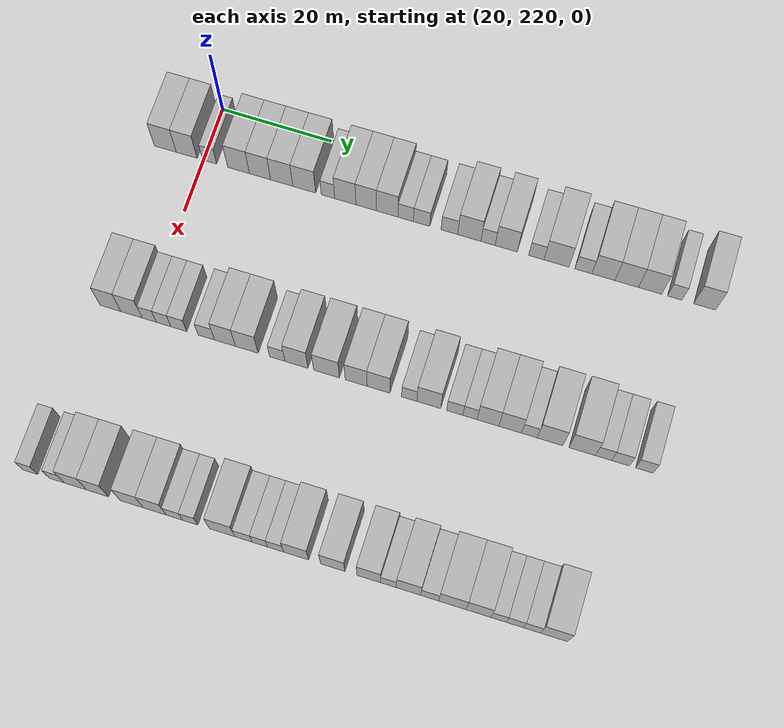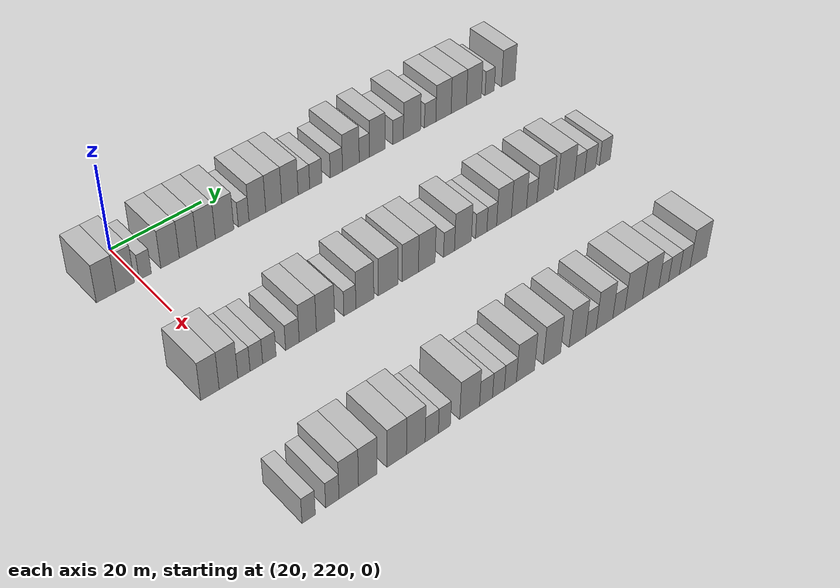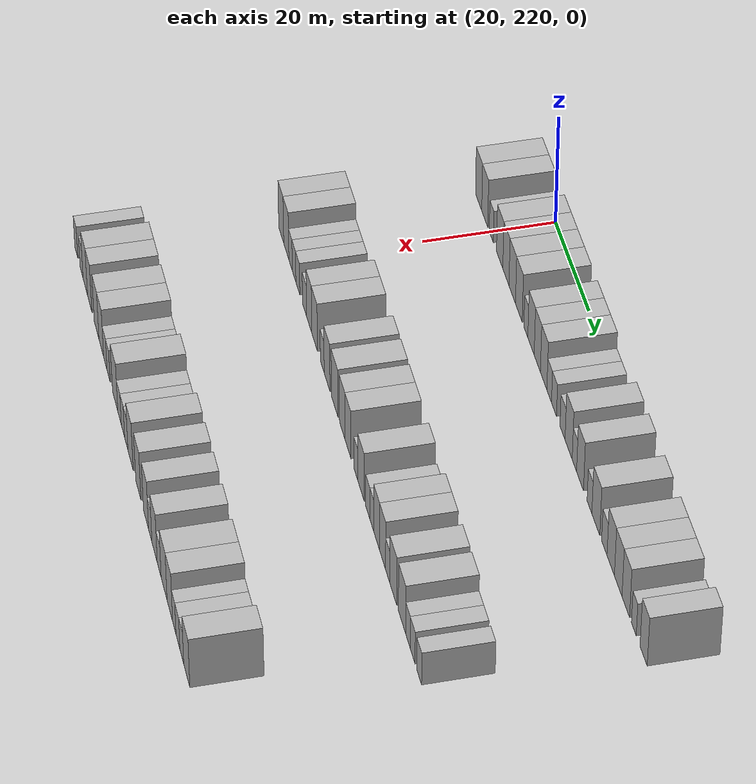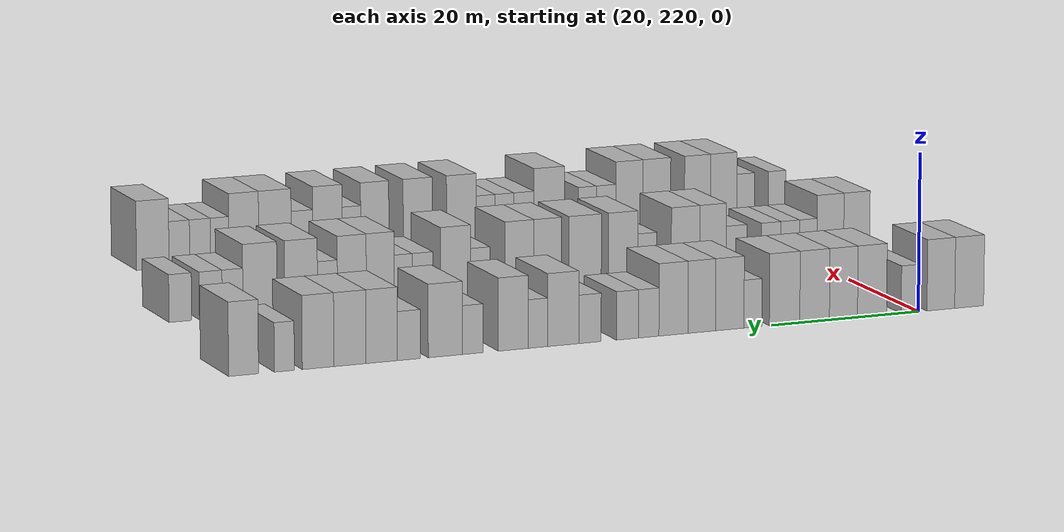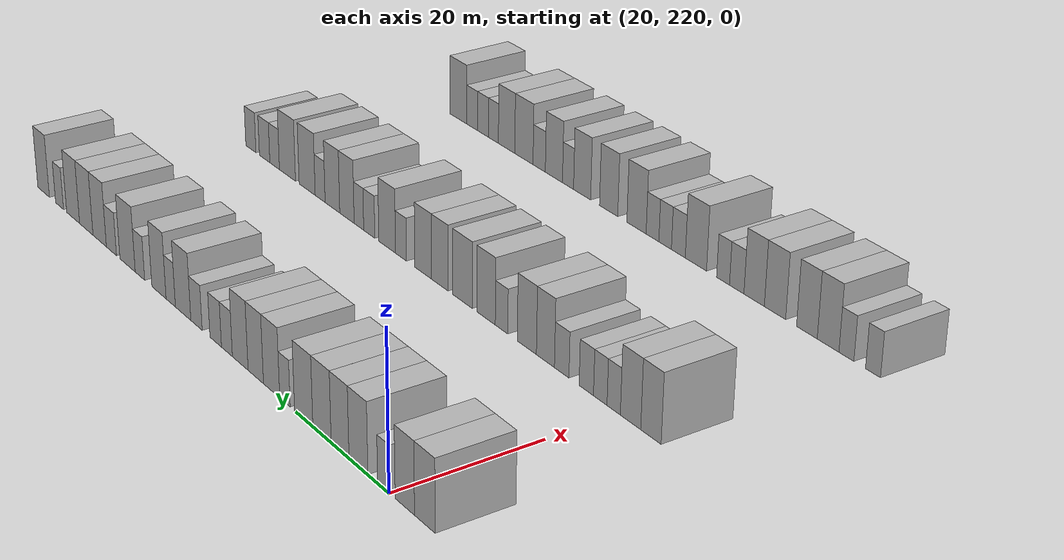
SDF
<sdf version="1.6">
 <world name="default">
  <model name="building_161">
   <static>1</static>
   <pose>25.0000 213.0078 0 0.000000 0.000000 0.000000</pose>
   <link name="link">
    <pose>0 0 4.50 0 0 0</pose>
    <collision name="collision"><geometry><box><size>10.0000 4.0017 9.0000</size></box></geometry></collision>
    <visual name="visual">
     <cast_shadows>0</cast_shadows>
     <geometry><box><size>10.0000 4.0017 9.0000</size></box></geometry>
     <material>
      <script>
       <uri>model://HANNAS_wall/materials/scripts</uri>
       <uri>model://HANNAS_wall/materials/textures</uri>
       <name>vrc/HANNAS_wall</name>
      </script>
     </material>
    </visual>
   </link>
  </model>
  <model name="building_162">
   <static>1</static>
   <pose>25.0000 216.9216 0 0.000000 0.000000 0.000000</pose>
   <link name="link">
    <pose>0 0 4.50 0 0 0</pose>
    <collision name="collision"><geometry><box><size>10.0000 3.8259 9.0000</size></box></geometry></collision>
    <visual name="visual">
     <cast_shadows>0</cast_shadows>
     <geometry><box><size>10.0000 3.8259 9.0000</size></box></geometry>
     <material>
      <script>
       <uri>model://HANNAS_wall/materials/scripts</uri>
       <uri>model://HANNAS_wall/materials/textures</uri>
       <name>vrc/HANNAS_wall</name>
      </script>
     </material>
    </visual>
   </link>
  </model>
  <model name="building_163">
   <static>1</static>
   <pose>25.0000 221.1102 0 0.000000 0.000000 0.000000</pose>
   <link name="link">
    <pose>0 0 3.00 0 0 0</pose>
    <collision name="collision"><geometry><box><size>10.0000 2.5511 6.0000</size></box></geometry></collision>
    <visual name="visual">
     <cast_shadows>0</cast_shadows>
     <geometry><box><size>10.0000 2.5511 6.0000</size></box></geometry>
     <material>
      <script>
       <uri>model://HANNAS_wall/materials/scripts</uri>
       <uri>model://HANNAS_wall/materials/textures</uri>
       <name>vrc/HANNAS_wall</name>
      </script>
     </material>
    </visual>
   </link>
  </model>
  <model name="building_164">
   <static>1</static>
   <pose>25.0000 226.3686 0 0.000000 0.000000 0.000000</pose>
   <link name="link">
    <pose>0 0 4.50 0 0 0</pose>
    <collision name="collision"><geometry><box><size>10.0000 3.9657 9.0000</size></box></geometry></collision>
    <visual name="visual">
     <cast_shadows>0</cast_shadows>
     <geometry><box><size>10.0000 3.9657 9.0000</size></box></geometry>
     <material>
      <script>
       <uri>model://HANNAS_wall/materials/scripts</uri>
       <uri>model://HANNAS_wall/materials/textures</uri>
       <name>vrc/HANNAS_wall</name>
      </script>
     </material>
    </visual>
   </link>
  </model>
  <model name="building_165">
   <static>1</static>
   <pose>25.0000 230.2644 0 0.000000 0.000000 0.000000</pose>
   <link name="link">
    <pose>0 0 4.50 0 0 0</pose>
    <collision name="collision"><geometry><box><size>10.0000 3.8260 9.0000</size></box></geometry></collision>
    <visual name="visual">
     <cast_shadows>0</cast_shadows>
     <geometry><box><size>10.0000 3.8260 9.0000</size></box></geometry>
     <material>
      <script>
       <uri>model://HANNAS_wall/materials/scripts</uri>
       <uri>model://HANNAS_wall/materials/textures</uri>
       <name>vrc/HANNAS_wall</name>
      </script>
     </material>
    </visual>
   </link>
  </model>
  <model name="building_166">
   <static>1</static>
   <pose>25.0000 234.1877 0 0.000000 0.000000 0.000000</pose>
   <link name="link">
    <pose>0 0 4.50 0 0 0</pose>
    <collision name="collision"><geometry><box><size>10.0000 4.0205 9.0000</size></box></geometry></collision>
    <visual name="visual">
     <cast_shadows>0</cast_shadows>
     <geometry><box><size>10.0000 4.0205 9.0000</size></box></geometry>
     <material>
      <script>
       <uri>model://HANNAS_wall/materials/scripts</uri>
       <uri>model://HANNAS_wall/materials/textures</uri>
       <name>vrc/HANNAS_wall</name>
      </script>
     </material>
    </visual>
   </link>
  </model>
  <model name="building_167">
   <static>1</static>
   <pose>25.0000 238.2552 0 0.000000 0.000000 0.000000</pose>
   <link name="link">
    <pose>0 0 4.50 0 0 0</pose>
    <collision name="collision"><geometry><box><size>10.0000 4.1146 9.0000</size></box></geometry></collision>
    <visual name="visual">
     <cast_shadows>0</cast_shadows>
     <geometry><box><size>10.0000 4.1146 9.0000</size></box></geometry>
     <material>
      <script>
       <uri>model://HANNAS_wall/materials/scripts</uri>
       <uri>model://HANNAS_wall/materials/textures</uri>
       <name>vrc/HANNAS_wall</name>
      </script>
     </material>
    </visual>
   </link>
  </model>
  <model name="building_168">
   <static>1</static>
   <pose>25.0000 242.5196 0 0.000000 0.000000 0.000000</pose>
   <link name="link">
    <pose>0 0 3.00 0 0 0</pose>
    <collision name="collision"><geometry><box><size>10.0000 2.4142 6.0000</size></box></geometry></collision>
    <visual name="visual">
     <cast_shadows>0</cast_shadows>
     <geometry><box><size>10.0000 2.4142 6.0000</size></box></geometry>
     <material>
      <script>
       <uri>model://HANNAS_wall/materials/scripts</uri>
       <uri>model://HANNAS_wall/materials/textures</uri>
       <name>vrc/HANNAS_wall</name>
      </script>
     </material>
    </visual>
   </link>
  </model>
  <model name="building_169">
   <static>1</static>
   <pose>25.0000 245.6295 0 0.000000 0.000000 0.000000</pose>
   <link name="link">
    <pose>0 0 4.50 0 0 0</pose>
    <collision name="collision"><geometry><box><size>10.0000 3.8058 9.0000</size></box></geometry></collision>
    <visual name="visual">
     <cast_shadows>0</cast_shadows>
     <geometry><box><size>10.0000 3.8058 9.0000</size></box></geometry>
     <material>
      <script>
       <uri>model://HANNAS_wall/materials/scripts</uri>
       <uri>model://HANNAS_wall/materials/textures</uri>
       <name>vrc/HANNAS_wall</name>
      </script>
     </material>
    </visual>
   </link>
  </model>
  <model name="building_170">
   <static>1</static>
   <pose>25.0000 249.3775 0 0.000000 0.000000 0.000000</pose>
   <link name="link">
    <pose>0 0 4.50 0 0 0</pose>
    <collision name="collision"><geometry><box><size>10.0000 3.6903 9.0000</size></box></geometry></collision>
    <visual name="visual">
     <cast_shadows>0</cast_shadows>
     <geometry><box><size>10.0000 3.6903 9.0000</size></box></geometry>
     <material>
      <script>
       <uri>model://HANNAS_wall/materials/scripts</uri>
       <uri>model://HANNAS_wall/materials/textures</uri>
       <name>vrc/HANNAS_wall</name>
      </script>
     </material>
    </visual>
   </link>
  </model>
  <model name="building_171">
   <static>1</static>
   <pose>25.0000 253.1462 0 0.000000 0.000000 0.000000</pose>
   <link name="link">
    <pose>0 0 4.50 0 0 0</pose>
    <collision name="collision"><geometry><box><size>10.0000 3.8471 9.0000</size></box></geometry></collision>
    <visual name="visual">
     <cast_shadows>0</cast_shadows>
     <geometry><box><size>10.0000 3.8471 9.0000</size></box></geometry>
     <material>
      <script>
       <uri>model://HANNAS_wall/materials/scripts</uri>
       <uri>model://HANNAS_wall/materials/textures</uri>
       <name>vrc/HANNAS_wall</name>
      </script>
     </material>
    </visual>
   </link>
  </model>
  <model name="building_172">
   <static>1</static>
   <pose>25.0000 256.4319 0 0.000000 0.000000 0.000000</pose>
   <link name="link">
    <pose>0 0 3.00 0 0 0</pose>
    <collision name="collision"><geometry><box><size>10.0000 2.7244 6.0000</size></box></geometry></collision>
    <visual name="visual">
     <cast_shadows>0</cast_shadows>
     <geometry><box><size>10.0000 2.7244 6.0000</size></box></geometry>
     <material>
      <script>
       <uri>model://HANNAS_wall/materials/scripts</uri>
       <uri>model://HANNAS_wall/materials/textures</uri>
       <name>vrc/HANNAS_wall</name>
      </script>
     </material>
    </visual>
   </link>
  </model>
  <model name="building_173">
   <static>1</static>
   <pose>25.0000 259.2507 0 0.000000 0.000000 0.000000</pose>
   <link name="link">
    <pose>0 0 3.00 0 0 0</pose>
    <collision name="collision"><geometry><box><size>10.0000 2.9132 6.0000</size></box></geometry></collision>
    <visual name="visual">
     <cast_shadows>0</cast_shadows>
     <geometry><box><size>10.0000 2.9132 6.0000</size></box></geometry>
     <material>
      <script>
       <uri>model://HANNAS_wall/materials/scripts</uri>
       <uri>model://HANNAS_wall/materials/textures</uri>
       <name>vrc/HANNAS_wall</name>
      </script>
     </material>
    </visual>
   </link>
  </model>
  <model name="building_174">
   <static>1</static>
   <pose>25.0000 264.1804 0 0.000000 0.000000 0.000000</pose>
   <link name="link">
    <pose>0 0 3.00 0 0 0</pose>
    <collision name="collision"><geometry><box><size>10.0000 2.9462 6.0000</size></box></geometry></collision>
    <visual name="visual">
     <cast_shadows>0</cast_shadows>
     <geometry><box><size>10.0000 2.9462 6.0000</size></box></geometry>
     <material>
      <script>
       <uri>model://HANNAS_wall/materials/scripts</uri>
       <uri>model://HANNAS_wall/materials/textures</uri>
       <name>vrc/HANNAS_wall</name>
      </script>
     </material>
    </visual>
   </link>
  </model>
  <model name="building_175">
   <static>1</static>
   <pose>25.0000 267.7006 0 0.000000 0.000000 0.000000</pose>
   <link name="link">
    <pose>0 0 4.50 0 0 0</pose>
    <collision name="collision"><geometry><box><size>10.0000 4.0941 9.0000</size></box></geometry></collision>
    <visual name="visual">
     <cast_shadows>0</cast_shadows>
     <geometry><box><size>10.0000 4.0941 9.0000</size></box></geometry>
     <material>
      <script>
       <uri>model://HANNAS_wall/materials/scripts</uri>
       <uri>model://HANNAS_wall/materials/textures</uri>
       <name>vrc/HANNAS_wall</name>
      </script>
     </material>
    </visual>
   </link>
  </model>
  <model name="building_176">
   <static>1</static>
   <pose>25.0000 271.0064 0 0.000000 0.000000 0.000000</pose>
   <link name="link">
    <pose>0 0 3.00 0 0 0</pose>
    <collision name="collision"><geometry><box><size>10.0000 2.5176 6.0000</size></box></geometry></collision>
    <visual name="visual">
     <cast_shadows>0</cast_shadows>
     <geometry><box><size>10.0000 2.5176 6.0000</size></box></geometry>
     <material>
      <script>
       <uri>model://HANNAS_wall/materials/scripts</uri>
       <uri>model://HANNAS_wall/materials/textures</uri>
       <name>vrc/HANNAS_wall</name>
      </script>
     </material>
    </visual>
   </link>
  </model>
  <model name="building_177">
   <static>1</static>
   <pose>25.0000 274.2102 0 0.000000 0.000000 0.000000</pose>
   <link name="link">
    <pose>0 0 4.50 0 0 0</pose>
    <collision name="collision"><geometry><box><size>10.0000 3.8900 9.0000</size></box></geometry></collision>
    <visual name="visual">
     <cast_shadows>0</cast_shadows>
     <geometry><box><size>10.0000 3.8900 9.0000</size></box></geometry>
     <material>
      <script>
       <uri>model://HANNAS_wall/materials/scripts</uri>
       <uri>model://HANNAS_wall/materials/textures</uri>
       <name>vrc/HANNAS_wall</name>
      </script>
     </material>
    </visual>
   </link>
  </model>
  <model name="building_178">
   <static>1</static>
   <pose>25.0000 279.4917 0 0.000000 0.000000 0.000000</pose>
   <link name="link">
    <pose>0 0 3.00 0 0 0</pose>
    <collision name="collision"><geometry><box><size>10.0000 2.6729 6.0000</size></box></geometry></collision>
    <visual name="visual">
     <cast_shadows>0</cast_shadows>
     <geometry><box><size>10.0000 2.6729 6.0000</size></box></geometry>
     <material>
      <script>
       <uri>model://HANNAS_wall/materials/scripts</uri>
       <uri>model://HANNAS_wall/materials/textures</uri>
       <name>vrc/HANNAS_wall</name>
      </script>
     </material>
    </visual>
   </link>
  </model>
  <model name="building_179">
   <static>1</static>
   <pose>25.0000 283.0258 0 0.000000 0.000000 0.000000</pose>
   <link name="link">
    <pose>0 0 4.50 0 0 0</pose>
    <collision name="collision"><geometry><box><size>10.0000 4.3953 9.0000</size></box></geometry></collision>
    <visual name="visual">
     <cast_shadows>0</cast_shadows>
     <geometry><box><size>10.0000 4.3953 9.0000</size></box></geometry>
     <material>
      <script>
       <uri>model://HANNAS_wall/materials/scripts</uri>
       <uri>model://HANNAS_wall/materials/textures</uri>
       <name>vrc/HANNAS_wall</name>
      </script>
     </material>
    </visual>
   </link>
  </model>
  <model name="building_180">
   <static>1</static>
   <pose>25.0000 287.7073 0 0.000000 0.000000 0.000000</pose>
   <link name="link">
    <pose>0 0 3.00 0 0 0</pose>
    <collision name="collision"><geometry><box><size>10.0000 2.9677 6.0000</size></box></geometry></collision>
    <visual name="visual">
     <cast_shadows>0</cast_shadows>
     <geometry><box><size>10.0000 2.9677 6.0000</size></box></geometry>
     <material>
      <script>
       <uri>model://HANNAS_wall/materials/scripts</uri>
       <uri>model://HANNAS_wall/materials/textures</uri>
       <name>vrc/HANNAS_wall</name>
      </script>
     </material>
    </visual>
   </link>
  </model>
  <model name="building_181">
   <static>1</static>
   <pose>25.0000 291.1958 0 0.000000 0.000000 0.000000</pose>
   <link name="link">
    <pose>0 0 4.50 0 0 0</pose>
    <collision name="collision"><geometry><box><size>10.0000 4.0093 9.0000</size></box></geometry></collision>
    <visual name="visual">
     <cast_shadows>0</cast_shadows>
     <geometry><box><size>10.0000 4.0093 9.0000</size></box></geometry>
     <material>
      <script>
       <uri>model://HANNAS_wall/materials/scripts</uri>
       <uri>model://HANNAS_wall/materials/textures</uri>
       <name>vrc/HANNAS_wall</name>
      </script>
     </material>
    </visual>
   </link>
  </model>
  <model name="building_182">
   <static>1</static>
   <pose>25.0000 295.2416 0 0.000000 0.000000 0.000000</pose>
   <link name="link">
    <pose>0 0 4.50 0 0 0</pose>
    <collision name="collision"><geometry><box><size>10.0000 4.0824 9.0000</size></box></geometry></collision>
    <visual name="visual">
     <cast_shadows>0</cast_shadows>
     <geometry><box><size>10.0000 4.0824 9.0000</size></box></geometry>
     <material>
      <script>
       <uri>model://HANNAS_wall/materials/scripts</uri>
       <uri>model://HANNAS_wall/materials/textures</uri>
       <name>vrc/HANNAS_wall</name>
      </script>
     </material>
    </visual>
   </link>
  </model>
  <model name="building_183">
   <static>1</static>
   <pose>25.0000 299.2977 0 0.000000 0.000000 0.000000</pose>
   <link name="link">
    <pose>0 0 4.50 0 0 0</pose>
    <collision name="collision"><geometry><box><size>10.0000 4.0297 9.0000</size></box></geometry></collision>
    <visual name="visual">
     <cast_shadows>0</cast_shadows>
     <geometry><box><size>10.0000 4.0297 9.0000</size></box></geometry>
     <material>
      <script>
       <uri>model://HANNAS_wall/materials/scripts</uri>
       <uri>model://HANNAS_wall/materials/textures</uri>
       <name>vrc/HANNAS_wall</name>
      </script>
     </material>
    </visual>
   </link>
  </model>
  <model name="building_184">
   <static>1</static>
   <pose>25.0000 303.5728 0 0.000000 0.000000 0.000000</pose>
   <link name="link">
    <pose>0 0 3.00 0 0 0</pose>
    <collision name="collision"><geometry><box><size>10.0000 2.5204 6.0000</size></box></geometry></collision>
    <visual name="visual">
     <cast_shadows>0</cast_shadows>
     <geometry><box><size>10.0000 2.5204 6.0000</size></box></geometry>
     <material>
      <script>
       <uri>model://HANNAS_wall/materials/scripts</uri>
       <uri>model://HANNAS_wall/materials/textures</uri>
       <name>vrc/HANNAS_wall</name>
      </script>
     </material>
    </visual>
   </link>
  </model>
  <model name="building_185">
   <static>1</static>
   <pose>25.0000 308.7095 0 0.000000 0.000000 0.000000</pose>
   <link name="link">
    <pose>0 0 4.50 0 0 0</pose>
    <collision name="collision"><geometry><box><size>10.0000 3.7530 9.0000</size></box></geometry></collision>
    <visual name="visual">
     <cast_shadows>0</cast_shadows>
     <geometry><box><size>10.0000 3.7530 9.0000</size></box></geometry>
     <material>
      <script>
       <uri>model://HANNAS_wall/materials/scripts</uri>
       <uri>model://HANNAS_wall/materials/textures</uri>
       <name>vrc/HANNAS_wall</name>
      </script>
     </material>
    </visual>
   </link>
  </model>
  <model name="building_375">
   <static>1</static>
   <pose>55.0000 214.1574 0 0.000000 0.000000 0.000000</pose>
   <link name="link">
    <pose>0 0 4.50 0 0 0</pose>
    <collision name="collision"><geometry><box><size>10.0000 3.7006 9.0000</size></box></geometry></collision>
    <visual name="visual">
     <cast_shadows>0</cast_shadows>
     <geometry><box><size>10.0000 3.7006 9.0000</size></box></geometry>
     <material>
      <script>
       <uri>model://HANNAS_wall/materials/scripts</uri>
       <uri>model://HANNAS_wall/materials/textures</uri>
       <name>vrc/HANNAS_wall</name>
      </script>
     </material>
    </visual>
   </link>
  </model>
  <model name="building_376">
   <static>1</static>
   <pose>55.0000 217.8894 0 0.000000 0.000000 0.000000</pose>
   <link name="link">
    <pose>0 0 4.50 0 0 0</pose>
    <collision name="collision"><geometry><box><size>10.0000 3.7634 9.0000</size></box></geometry></collision>
    <visual name="visual">
     <cast_shadows>0</cast_shadows>
     <geometry><box><size>10.0000 3.7634 9.0000</size></box></geometry>
     <material>
      <script>
       <uri>model://HANNAS_wall/materials/scripts</uri>
       <uri>model://HANNAS_wall/materials/textures</uri>
       <name>vrc/HANNAS_wall</name>
      </script>
     </material>
    </visual>
   </link>
  </model>
  <model name="building_377">
   <static>1</static>
   <pose>55.0000 221.0256 0 0.000000 0.000000 0.000000</pose>
   <link name="link">
    <pose>0 0 3.00 0 0 0</pose>
    <collision name="collision"><geometry><box><size>10.0000 2.5091 6.0000</size></box></geometry></collision>
    <visual name="visual">
     <cast_shadows>0</cast_shadows>
     <geometry><box><size>10.0000 2.5091 6.0000</size></box></geometry>
     <material>
      <script>
       <uri>model://HANNAS_wall/materials/scripts</uri>
       <uri>model://HANNAS_wall/materials/textures</uri>
       <name>vrc/HANNAS_wall</name>
      </script>
     </material>
    </visual>
   </link>
  </model>
  <model name="building_378">
   <static>1</static>
   <pose>55.0000 223.5733 0 0.000000 0.000000 0.000000</pose>
   <link name="link">
    <pose>0 0 3.00 0 0 0</pose>
    <collision name="collision"><geometry><box><size>10.0000 2.5862 6.0000</size></box></geometry></collision>
    <visual name="visual">
     <cast_shadows>0</cast_shadows>
     <geometry><box><size>10.0000 2.5862 6.0000</size></box></geometry>
     <material>
      <script>
       <uri>model://HANNAS_wall/materials/scripts</uri>
       <uri>model://HANNAS_wall/materials/textures</uri>
       <name>vrc/HANNAS_wall</name>
      </script>
     </material>
    </visual>
   </link>
  </model>
  <model name="building_379">
   <static>1</static>
   <pose>55.0000 226.2583 0 0.000000 0.000000 0.000000</pose>
   <link name="link">
    <pose>0 0 3.00 0 0 0</pose>
    <collision name="collision"><geometry><box><size>10.0000 2.7837 6.0000</size></box></geometry></collision>
    <visual name="visual">
     <cast_shadows>0</cast_shadows>
     <geometry><box><size>10.0000 2.7837 6.0000</size></box></geometry>
     <material>
      <script>
       <uri>model://HANNAS_wall/materials/scripts</uri>
       <uri>model://HANNAS_wall/materials/textures</uri>
       <name>vrc/HANNAS_wall</name>
      </script>
     </material>
    </visual>
   </link>
  </model>
  <model name="building_380">
   <static>1</static>
   <pose>55.0000 231.0979 0 0.000000 0.000000 0.000000</pose>
   <link name="link">
    <pose>0 0 3.00 0 0 0</pose>
    <collision name="collision"><geometry><box><size>10.0000 2.8956 6.0000</size></box></geometry></collision>
    <visual name="visual">
     <cast_shadows>0</cast_shadows>
     <geometry><box><size>10.0000 2.8956 6.0000</size></box></geometry>
     <material>
      <script>
       <uri>model://HANNAS_wall/materials/scripts</uri>
       <uri>model://HANNAS_wall/materials/textures</uri>
       <name>vrc/HANNAS_wall</name>
      </script>
     </material>
    </visual>
   </link>
  </model>
  <model name="building_381">
   <static>1</static>
   <pose>55.0000 234.3763 0 0.000000 0.000000 0.000000</pose>
   <link name="link">
    <pose>0 0 4.50 0 0 0</pose>
    <collision name="collision"><geometry><box><size>10.0000 3.6612 9.0000</size></box></geometry></collision>
    <visual name="visual">
     <cast_shadows>0</cast_shadows>
     <geometry><box><size>10.0000 3.6612 9.0000</size></box></geometry>
     <material>
      <script>
       <uri>model://HANNAS_wall/materials/scripts</uri>
       <uri>model://HANNAS_wall/materials/textures</uri>
       <name>vrc/HANNAS_wall</name>
      </script>
     </material>
    </visual>
   </link>
  </model>
  <model name="building_382">
   <static>1</static>
   <pose>55.0000 238.1928 0 0.000000 0.000000 0.000000</pose>
   <link name="link">
    <pose>0 0 4.50 0 0 0</pose>
    <collision name="collision"><geometry><box><size>10.0000 3.9717 9.0000</size></box></geometry></collision>
    <visual name="visual">
     <cast_shadows>0</cast_shadows>
     <geometry><box><size>10.0000 3.9717 9.0000</size></box></geometry>
     <material>
      <script>
       <uri>model://HANNAS_wall/materials/scripts</uri>
       <uri>model://HANNAS_wall/materials/textures</uri>
       <name>vrc/HANNAS_wall</name>
      </script>
     </material>
    </visual>
   </link>
  </model>
  <model name="building_383">
   <static>1</static>
   <pose>55.0000 243.5120 0 0.000000 0.000000 0.000000</pose>
   <link name="link">
    <pose>0 0 3.00 0 0 0</pose>
    <collision name="collision"><geometry><box><size>10.0000 2.6667 6.0000</size></box></geometry></collision>
    <visual name="visual">
     <cast_shadows>0</cast_shadows>
     <geometry><box><size>10.0000 2.6667 6.0000</size></box></geometry>
     <material>
      <script>
       <uri>model://HANNAS_wall/materials/scripts</uri>
       <uri>model://HANNAS_wall/materials/textures</uri>
       <name>vrc/HANNAS_wall</name>
      </script>
     </material>
    </visual>
   </link>
  </model>
  <model name="building_384">
   <static>1</static>
   <pose>55.0000 246.8453 0 0.000000 0.000000 0.000000</pose>
   <link name="link">
    <pose>0 0 4.50 0 0 0</pose>
    <collision name="collision"><geometry><box><size>10.0000 4.0000 9.0000</size></box></geometry></collision>
    <visual name="visual">
     <cast_shadows>0</cast_shadows>
     <geometry><box><size>10.0000 4.0000 9.0000</size></box></geometry>
     <material>
      <script>
       <uri>model://HANNAS_wall/materials/scripts</uri>
       <uri>model://HANNAS_wall/materials/textures</uri>
       <name>vrc/HANNAS_wall</name>
      </script>
     </material>
    </visual>
   </link>
  </model>
  <model name="building_385">
   <static>1</static>
   <pose>55.0000 252.0674 0 0.000000 0.000000 0.000000</pose>
   <link name="link">
    <pose>0 0 4.50 0 0 0</pose>
    <collision name="collision"><geometry><box><size>10.0000 4.4443 9.0000</size></box></geometry></collision>
    <visual name="visual">
     <cast_shadows>0</cast_shadows>
     <geometry><box><size>10.0000 4.4443 9.0000</size></box></geometry>
     <material>
      <script>
       <uri>model://HANNAS_wall/materials/scripts</uri>
       <uri>model://HANNAS_wall/materials/textures</uri>
       <name>vrc/HANNAS_wall</name>
      </script>
     </material>
    </visual>
   </link>
  </model>
  <model name="building_386">
   <static>1</static>
   <pose>55.0000 257.1827 0 0.000000 0.000000 0.000000</pose>
   <link name="link">
    <pose>0 0 4.50 0 0 0</pose>
    <collision name="collision"><geometry><box><size>10.0000 3.7862 9.0000</size></box></geometry></collision>
    <visual name="visual">
     <cast_shadows>0</cast_shadows>
     <geometry><box><size>10.0000 3.7862 9.0000</size></box></geometry>
     <material>
      <script>
       <uri>model://HANNAS_wall/materials/scripts</uri>
       <uri>model://HANNAS_wall/materials/textures</uri>
       <name>vrc/HANNAS_wall</name>
      </script>
     </material>
    </visual>
   </link>
  </model>
  <model name="building_387">
   <static>1</static>
   <pose>55.0000 261.0353 0 0.000000 0.000000 0.000000</pose>
   <link name="link">
    <pose>0 0 4.50 0 0 0</pose>
    <collision name="collision"><geometry><box><size>10.0000 3.9190 9.0000</size></box></geometry></collision>
    <visual name="visual">
     <cast_shadows>0</cast_shadows>
     <geometry><box><size>10.0000 3.9190 9.0000</size></box></geometry>
     <material>
      <script>
       <uri>model://HANNAS_wall/materials/scripts</uri>
       <uri>model://HANNAS_wall/materials/textures</uri>
       <name>vrc/HANNAS_wall</name>
      </script>
     </material>
    </visual>
   </link>
  </model>
  <model name="building_388">
   <static>1</static>
   <pose>55.0000 266.3059 0 0.000000 0.000000 0.000000</pose>
   <link name="link">
    <pose>0 0 3.00 0 0 0</pose>
    <collision name="collision"><geometry><box><size>10.0000 2.6221 6.0000</size></box></geometry></collision>
    <visual name="visual">
     <cast_shadows>0</cast_shadows>
     <geometry><box><size>10.0000 2.6221 6.0000</size></box></geometry>
     <material>
      <script>
       <uri>model://HANNAS_wall/materials/scripts</uri>
       <uri>model://HANNAS_wall/materials/textures</uri>
       <name>vrc/HANNAS_wall</name>
      </script>
     </material>
    </visual>
   </link>
  </model>
  <model name="building_389">
   <static>1</static>
   <pose>55.0000 269.6591 0 0.000000 0.000000 0.000000</pose>
   <link name="link">
    <pose>0 0 4.50 0 0 0</pose>
    <collision name="collision"><geometry><box><size>10.0000 4.0844 9.0000</size></box></geometry></collision>
    <visual name="visual">
     <cast_shadows>0</cast_shadows>
     <geometry><box><size>10.0000 4.0844 9.0000</size></box></geometry>
     <material>
      <script>
       <uri>model://HANNAS_wall/materials/scripts</uri>
       <uri>model://HANNAS_wall/materials/textures</uri>
       <name>vrc/HANNAS_wall</name>
      </script>
     </material>
    </visual>
   </link>
  </model>
  <model name="building_390">
   <static>1</static>
   <pose>55.0000 274.0940 0 0.000000 0.000000 0.000000</pose>
   <link name="link">
    <pose>0 0 3.00 0 0 0</pose>
    <collision name="collision"><geometry><box><size>10.0000 2.7852 6.0000</size></box></geometry></collision>
    <visual name="visual">
     <cast_shadows>0</cast_shadows>
     <geometry><box><size>10.0000 2.7852 6.0000</size></box></geometry>
     <material>
      <script>
       <uri>model://HANNAS_wall/materials/scripts</uri>
       <uri>model://HANNAS_wall/materials/textures</uri>
       <name>vrc/HANNAS_wall</name>
      </script>
     </material>
    </visual>
   </link>
  </model>
  <model name="building_391">
   <static>1</static>
   <pose>55.0000 276.6947 0 0.000000 0.000000 0.000000</pose>
   <link name="link">
    <pose>0 0 3.00 0 0 0</pose>
    <collision name="collision"><geometry><box><size>10.0000 2.4163 6.0000</size></box></geometry></collision>
    <visual name="visual">
     <cast_shadows>0</cast_shadows>
     <geometry><box><size>10.0000 2.4163 6.0000</size></box></geometry>
     <material>
      <script>
       <uri>model://HANNAS_wall/materials/scripts</uri>
       <uri>model://HANNAS_wall/materials/textures</uri>
       <name>vrc/HANNAS_wall</name>
      </script>
     </material>
    </visual>
   </link>
  </model>
  <model name="building_392">
   <static>1</static>
   <pose>55.0000 279.7571 0 0.000000 0.000000 0.000000</pose>
   <link name="link">
    <pose>0 0 4.50 0 0 0</pose>
    <collision name="collision"><geometry><box><size>10.0000 3.7085 9.0000</size></box></geometry></collision>
    <visual name="visual">
     <cast_shadows>0</cast_shadows>
     <geometry><box><size>10.0000 3.7085 9.0000</size></box></geometry>
     <material>
      <script>
       <uri>model://HANNAS_wall/materials/scripts</uri>
       <uri>model://HANNAS_wall/materials/textures</uri>
       <name>vrc/HANNAS_wall</name>
      </script>
     </material>
    </visual>
   </link>
  </model>
  <model name="building_393">
   <static>1</static>
   <pose>55.0000 283.5289 0 0.000000 0.000000 0.000000</pose>
   <link name="link">
    <pose>0 0 4.50 0 0 0</pose>
    <collision name="collision"><geometry><box><size>10.0000 3.8351 9.0000</size></box></geometry></collision>
    <visual name="visual">
     <cast_shadows>0</cast_shadows>
     <geometry><box><size>10.0000 3.8351 9.0000</size></box></geometry>
     <material>
      <script>
       <uri>model://HANNAS_wall/materials/scripts</uri>
       <uri>model://HANNAS_wall/materials/textures</uri>
       <name>vrc/HANNAS_wall</name>
      </script>
     </material>
    </visual>
   </link>
  </model>
  <model name="building_394">
   <static>1</static>
   <pose>55.0000 286.7698 0 0.000000 0.000000 0.000000</pose>
   <link name="link">
    <pose>0 0 3.00 0 0 0</pose>
    <collision name="collision"><geometry><box><size>10.0000 2.6468 6.0000</size></box></geometry></collision>
    <visual name="visual">
     <cast_shadows>0</cast_shadows>
     <geometry><box><size>10.0000 2.6468 6.0000</size></box></geometry>
     <material>
      <script>
       <uri>model://HANNAS_wall/materials/scripts</uri>
       <uri>model://HANNAS_wall/materials/textures</uri>
       <name>vrc/HANNAS_wall</name>
      </script>
     </material>
    </visual>
   </link>
  </model>
  <model name="building_395">
   <static>1</static>
   <pose>55.0000 290.2665 0 0.000000 0.000000 0.000000</pose>
   <link name="link">
    <pose>0 0 4.50 0 0 0</pose>
    <collision name="collision"><geometry><box><size>10.0000 4.3466 9.0000</size></box></geometry></collision>
    <visual name="visual">
     <cast_shadows>0</cast_shadows>
     <geometry><box><size>10.0000 4.3466 9.0000</size></box></geometry>
     <material>
      <script>
       <uri>model://HANNAS_wall/materials/scripts</uri>
       <uri>model://HANNAS_wall/materials/textures</uri>
       <name>vrc/HANNAS_wall</name>
      </script>
     </material>
    </visual>
   </link>
  </model>
  <model name="building_396">
   <static>1</static>
   <pose>55.0000 295.6731 0 0.000000 0.000000 0.000000</pose>
   <link name="link">
    <pose>0 0 4.50 0 0 0</pose>
    <collision name="collision"><geometry><box><size>10.0000 4.4666 9.0000</size></box></geometry></collision>
    <visual name="visual">
     <cast_shadows>0</cast_shadows>
     <geometry><box><size>10.0000 4.4666 9.0000</size></box></geometry>
     <material>
      <script>
       <uri>model://HANNAS_wall/materials/scripts</uri>
       <uri>model://HANNAS_wall/materials/textures</uri>
       <name>vrc/HANNAS_wall</name>
      </script>
     </material>
    </visual>
   </link>
  </model>
  <model name="building_397">
   <static>1</static>
   <pose>55.0000 299.2640 0 0.000000 0.000000 0.000000</pose>
   <link name="link">
    <pose>0 0 3.00 0 0 0</pose>
    <collision name="collision"><geometry><box><size>10.0000 2.7153 6.0000</size></box></geometry></collision>
    <visual name="visual">
     <cast_shadows>0</cast_shadows>
     <geometry><box><size>10.0000 2.7153 6.0000</size></box></geometry>
     <material>
      <script>
       <uri>model://HANNAS_wall/materials/scripts</uri>
       <uri>model://HANNAS_wall/materials/textures</uri>
       <name>vrc/HANNAS_wall</name>
      </script>
     </material>
    </visual>
   </link>
  </model>
  <model name="building_398">
   <static>1</static>
   <pose>55.0000 302.1188 0 0.000000 0.000000 0.000000</pose>
   <link name="link">
    <pose>0 0 3.00 0 0 0</pose>
    <collision name="collision"><geometry><box><size>10.0000 2.9943 6.0000</size></box></geometry></collision>
    <visual name="visual">
     <cast_shadows>0</cast_shadows>
     <geometry><box><size>10.0000 2.9943 6.0000</size></box></geometry>
     <material>
      <script>
       <uri>model://HANNAS_wall/materials/scripts</uri>
       <uri>model://HANNAS_wall/materials/textures</uri>
       <name>vrc/HANNAS_wall</name>
      </script>
     </material>
    </visual>
   </link>
  </model>
  <model name="building_399">
   <static>1</static>
   <pose>55.0000 306.0852 0 0.000000 0.000000 0.000000</pose>
   <link name="link">
    <pose>0 0 3.00 0 0 0</pose>
    <collision name="collision"><geometry><box><size>10.0000 2.9385 6.0000</size></box></geometry></collision>
    <visual name="visual">
     <cast_shadows>0</cast_shadows>
     <geometry><box><size>10.0000 2.9385 6.0000</size></box></geometry>
     <material>
      <script>
       <uri>model://HANNAS_wall/materials/scripts</uri>
       <uri>model://HANNAS_wall/materials/textures</uri>
       <name>vrc/HANNAS_wall</name>
      </script>
     </material>
    </visual>
   </link>
  </model>
  <model name="building_608">
   <static>1</static>
   <pose>85.0000 211.5531 0 0.000000 0.000000 0.000000</pose>
   <link name="link">
    <pose>0 0 3.00 0 0 0</pose>
    <collision name="collision"><geometry><box><size>10.0000 2.5457 6.0000</size></box></geometry></collision>
    <visual name="visual">
     <cast_shadows>0</cast_shadows>
     <geometry><box><size>10.0000 2.5457 6.0000</size></box></geometry>
     <material>
      <script>
       <uri>model://HANNAS_wall/materials/scripts</uri>
       <uri>model://HANNAS_wall/materials/textures</uri>
       <name>vrc/HANNAS_wall</name>
      </script>
     </material>
    </visual>
   </link>
  </model>
  <model name="building_609">
   <static>1</static>
   <pose>85.0000 216.1291 0 0.000000 0.000000 0.000000</pose>
   <link name="link">
    <pose>0 0 3.00 0 0 0</pose>
    <collision name="collision"><geometry><box><size>10.0000 2.6064 6.0000</size></box></geometry></collision>
    <visual name="visual">
     <cast_shadows>0</cast_shadows>
     <geometry><box><size>10.0000 2.6064 6.0000</size></box></geometry>
     <material>
      <script>
       <uri>model://HANNAS_wall/materials/scripts</uri>
       <uri>model://HANNAS_wall/materials/textures</uri>
       <name>vrc/HANNAS_wall</name>
      </script>
     </material>
    </visual>
   </link>
  </model>
  <model name="building_610">
   <static>1</static>
   <pose>85.0000 219.3542 0 0.000000 0.000000 0.000000</pose>
   <link name="link">
    <pose>0 0 4.50 0 0 0</pose>
    <collision name="collision"><geometry><box><size>10.0000 3.8437 9.0000</size></box></geometry></collision>
    <visual name="visual">
     <cast_shadows>0</cast_shadows>
     <geometry><box><size>10.0000 3.8437 9.0000</size></box></geometry>
     <material>
      <script>
       <uri>model://HANNAS_wall/materials/scripts</uri>
       <uri>model://HANNAS_wall/materials/textures</uri>
       <name>vrc/HANNAS_wall</name>
      </script>
     </material>
    </visual>
   </link>
  </model>
  <model name="building_611">
   <static>1</static>
   <pose>85.0000 223.1491 0 0.000000 0.000000 0.000000</pose>
   <link name="link">
    <pose>0 0 4.50 0 0 0</pose>
    <collision name="collision"><geometry><box><size>10.0000 3.7461 9.0000</size></box></geometry></collision>
    <visual name="visual">
     <cast_shadows>0</cast_shadows>
     <geometry><box><size>10.0000 3.7461 9.0000</size></box></geometry>
     <material>
      <script>
       <uri>model://HANNAS_wall/materials/scripts</uri>
       <uri>model://HANNAS_wall/materials/textures</uri>
       <name>vrc/HANNAS_wall</name>
      </script>
     </material>
    </visual>
   </link>
  </model>
  <model name="building_612">
   <static>1</static>
   <pose>85.0000 229.0140 0 0.000000 0.000000 0.000000</pose>
   <link name="link">
    <pose>0 0 4.50 0 0 0</pose>
    <collision name="collision"><geometry><box><size>10.0000 3.9836 9.0000</size></box></geometry></collision>
    <visual name="visual">
     <cast_shadows>0</cast_shadows>
     <geometry><box><size>10.0000 3.9836 9.0000</size></box></geometry>
     <material>
      <script>
       <uri>model://HANNAS_wall/materials/scripts</uri>
       <uri>model://HANNAS_wall/materials/textures</uri>
       <name>vrc/HANNAS_wall</name>
      </script>
     </material>
    </visual>
   </link>
  </model>
  <model name="building_613">
   <static>1</static>
   <pose>85.0000 232.9521 0 0.000000 0.000000 0.000000</pose>
   <link name="link">
    <pose>0 0 4.50 0 0 0</pose>
    <collision name="collision"><geometry><box><size>10.0000 3.8928 9.0000</size></box></geometry></collision>
    <visual name="visual">
     <cast_shadows>0</cast_shadows>
     <geometry><box><size>10.0000 3.8928 9.0000</size></box></geometry>
     <material>
      <script>
       <uri>model://HANNAS_wall/materials/scripts</uri>
       <uri>model://HANNAS_wall/materials/textures</uri>
       <name>vrc/HANNAS_wall</name>
      </script>
     </material>
    </visual>
   </link>
  </model>
  <model name="building_614">
   <static>1</static>
   <pose>85.0000 236.3014 0 0.000000 0.000000 0.000000</pose>
   <link name="link">
    <pose>0 0 3.00 0 0 0</pose>
    <collision name="collision"><geometry><box><size>10.0000 2.8058 6.0000</size></box></geometry></collision>
    <visual name="visual">
     <cast_shadows>0</cast_shadows>
     <geometry><box><size>10.0000 2.8058 6.0000</size></box></geometry>
     <material>
      <script>
       <uri>model://HANNAS_wall/materials/scripts</uri>
       <uri>model://HANNAS_wall/materials/textures</uri>
       <name>vrc/HANNAS_wall</name>
      </script>
     </material>
    </visual>
   </link>
  </model>
  <model name="building_615">
   <static>1</static>
   <pose>85.0000 238.9761 0 0.000000 0.000000 0.000000</pose>
   <link name="link">
    <pose>0 0 3.00 0 0 0</pose>
    <collision name="collision"><geometry><box><size>10.0000 2.5435 6.0000</size></box></geometry></collision>
    <visual name="visual">
     <cast_shadows>0</cast_shadows>
     <geometry><box><size>10.0000 2.5435 6.0000</size></box></geometry>
     <material>
      <script>
       <uri>model://HANNAS_wall/materials/scripts</uri>
       <uri>model://HANNAS_wall/materials/textures</uri>
       <name>vrc/HANNAS_wall</name>
      </script>
     </material>
    </visual>
   </link>
  </model>
  <model name="building_616">
   <static>1</static>
   <pose>85.0000 244.4009 0 0.000000 0.000000 0.000000</pose>
   <link name="link">
    <pose>0 0 4.50 0 0 0</pose>
    <collision name="collision"><geometry><box><size>10.0000 4.3062 9.0000</size></box></geometry></collision>
    <visual name="visual">
     <cast_shadows>0</cast_shadows>
     <geometry><box><size>10.0000 4.3062 9.0000</size></box></geometry>
     <material>
      <script>
       <uri>model://HANNAS_wall/materials/scripts</uri>
       <uri>model://HANNAS_wall/materials/textures</uri>
       <name>vrc/HANNAS_wall</name>
      </script>
     </material>
    </visual>
   </link>
  </model>
  <model name="building_617">
   <static>1</static>
   <pose>85.0000 247.9858 0 0.000000 0.000000 0.000000</pose>
   <link name="link">
    <pose>0 0 3.00 0 0 0</pose>
    <collision name="collision"><geometry><box><size>10.0000 2.8634 6.0000</size></box></geometry></collision>
    <visual name="visual">
     <cast_shadows>0</cast_shadows>
     <geometry><box><size>10.0000 2.8634 6.0000</size></box></geometry>
     <material>
      <script>
       <uri>model://HANNAS_wall/materials/scripts</uri>
       <uri>model://HANNAS_wall/materials/textures</uri>
       <name>vrc/HANNAS_wall</name>
      </script>
     </material>
    </visual>
   </link>
  </model>
  <model name="building_618">
   <static>1</static>
   <pose>85.0000 250.7333 0 0.000000 0.000000 0.000000</pose>
   <link name="link">
    <pose>0 0 3.00 0 0 0</pose>
    <collision name="collision"><geometry><box><size>10.0000 2.6315 6.0000</size></box></geometry></collision>
    <visual name="visual">
     <cast_shadows>0</cast_shadows>
     <geometry><box><size>10.0000 2.6315 6.0000</size></box></geometry>
     <material>
      <script>
       <uri>model://HANNAS_wall/materials/scripts</uri>
       <uri>model://HANNAS_wall/materials/textures</uri>
       <name>vrc/HANNAS_wall</name>
      </script>
     </material>
    </visual>
   </link>
  </model>
  <model name="building_619">
   <static>1</static>
   <pose>85.0000 253.3967 0 0.000000 0.000000 0.000000</pose>
   <link name="link">
    <pose>0 0 3.00 0 0 0</pose>
    <collision name="collision"><geometry><box><size>10.0000 2.6954 6.0000</size></box></geometry></collision>
    <visual name="visual">
     <cast_shadows>0</cast_shadows>
     <geometry><box><size>10.0000 2.6954 6.0000</size></box></geometry>
     <material>
      <script>
       <uri>model://HANNAS_wall/materials/scripts</uri>
       <uri>model://HANNAS_wall/materials/textures</uri>
       <name>vrc/HANNAS_wall</name>
      </script>
     </material>
    </visual>
   </link>
  </model>
  <model name="building_620">
   <static>1</static>
   <pose>85.0000 256.8197 0 0.000000 0.000000 0.000000</pose>
   <link name="link">
    <pose>0 0 4.50 0 0 0</pose>
    <collision name="collision"><geometry><box><size>10.0000 4.1506 9.0000</size></box></geometry></collision>
    <visual name="visual">
     <cast_shadows>0</cast_shadows>
     <geometry><box><size>10.0000 4.1506 9.0000</size></box></geometry>
     <material>
      <script>
       <uri>model://HANNAS_wall/materials/scripts</uri>
       <uri>model://HANNAS_wall/materials/textures</uri>
       <name>vrc/HANNAS_wall</name>
      </script>
     </material>
    </visual>
   </link>
  </model>
  <model name="building_621">
   <static>1</static>
   <pose>85.0000 262.9181 0 0.000000 0.000000 0.000000</pose>
   <link name="link">
    <pose>0 0 4.50 0 0 0</pose>
    <collision name="collision"><geometry><box><size>10.0000 4.0461 9.0000</size></box></geometry></collision>
    <visual name="visual">
     <cast_shadows>0</cast_shadows>
     <geometry><box><size>10.0000 4.0461 9.0000</size></box></geometry>
     <material>
      <script>
       <uri>model://HANNAS_wall/materials/scripts</uri>
       <uri>model://HANNAS_wall/materials/textures</uri>
       <name>vrc/HANNAS_wall</name>
      </script>
     </material>
    </visual>
   </link>
  </model>
  <model name="building_622">
   <static>1</static>
   <pose>85.0000 268.8966 0 0.000000 0.000000 0.000000</pose>
   <link name="link">
    <pose>0 0 4.50 0 0 0</pose>
    <collision name="collision"><geometry><box><size>10.0000 3.9109 9.0000</size></box></geometry></collision>
    <visual name="visual">
     <cast_shadows>0</cast_shadows>
     <geometry><box><size>10.0000 3.9109 9.0000</size></box></geometry>
     <material>
      <script>
       <uri>model://HANNAS_wall/materials/scripts</uri>
       <uri>model://HANNAS_wall/materials/textures</uri>
       <name>vrc/HANNAS_wall</name>
      </script>
     </material>
    </visual>
   </link>
  </model>
  <model name="building_623">
   <static>1</static>
   <pose>85.0000 272.1409 0 0.000000 0.000000 0.000000</pose>
   <link name="link">
    <pose>0 0 3.00 0 0 0</pose>
    <collision name="collision"><geometry><box><size>10.0000 2.5778 6.0000</size></box></geometry></collision>
    <visual name="visual">
     <cast_shadows>0</cast_shadows>
     <geometry><box><size>10.0000 2.5778 6.0000</size></box></geometry>
     <material>
      <script>
       <uri>model://HANNAS_wall/materials/scripts</uri>
       <uri>model://HANNAS_wall/materials/textures</uri>
       <name>vrc/HANNAS_wall</name>
      </script>
     </material>
    </visual>
   </link>
  </model>
  <model name="building_624">
   <static>1</static>
   <pose>85.0000 275.4516 0 0.000000 0.000000 0.000000</pose>
   <link name="link">
    <pose>0 0 4.50 0 0 0</pose>
    <collision name="collision"><geometry><box><size>10.0000 4.0436 9.0000</size></box></geometry></collision>
    <visual name="visual">
     <cast_shadows>0</cast_shadows>
     <geometry><box><size>10.0000 4.0436 9.0000</size></box></geometry>
     <material>
      <script>
       <uri>model://HANNAS_wall/materials/scripts</uri>
       <uri>model://HANNAS_wall/materials/textures</uri>
       <name>vrc/HANNAS_wall</name>
      </script>
     </material>
    </visual>
   </link>
  </model>
  <model name="building_625">
   <static>1</static>
   <pose>85.0000 278.9517 0 0.000000 0.000000 0.000000</pose>
   <link name="link">
    <pose>0 0 3.00 0 0 0</pose>
    <collision name="collision"><geometry><box><size>10.0000 2.9565 6.0000</size></box></geometry></collision>
    <visual name="visual">
     <cast_shadows>0</cast_shadows>
     <geometry><box><size>10.0000 2.9565 6.0000</size></box></geometry>
     <material>
      <script>
       <uri>model://HANNAS_wall/materials/scripts</uri>
       <uri>model://HANNAS_wall/materials/textures</uri>
       <name>vrc/HANNAS_wall</name>
      </script>
     </material>
    </visual>
   </link>
  </model>
  <model name="building_626">
   <static>1</static>
   <pose>85.0000 282.6591 0 0.000000 0.000000 0.000000</pose>
   <link name="link">
    <pose>0 0 4.50 0 0 0</pose>
    <collision name="collision"><geometry><box><size>10.0000 4.4584 9.0000</size></box></geometry></collision>
    <visual name="visual">
     <cast_shadows>0</cast_shadows>
     <geometry><box><size>10.0000 4.4584 9.0000</size></box></geometry>
     <material>
      <script>
       <uri>model://HANNAS_wall/materials/scripts</uri>
       <uri>model://HANNAS_wall/materials/textures</uri>
       <name>vrc/HANNAS_wall</name>
      </script>
     </material>
    </visual>
   </link>
  </model>
  <model name="building_627">
   <static>1</static>
   <pose>85.0000 286.9282 0 0.000000 0.000000 0.000000</pose>
   <link name="link">
    <pose>0 0 4.50 0 0 0</pose>
    <collision name="collision"><geometry><box><size>10.0000 4.0798 9.0000</size></box></geometry></collision>
    <visual name="visual">
     <cast_shadows>0</cast_shadows>
     <geometry><box><size>10.0000 4.0798 9.0000</size></box></geometry>
     <material>
      <script>
       <uri>model://HANNAS_wall/materials/scripts</uri>
       <uri>model://HANNAS_wall/materials/textures</uri>
       <name>vrc/HANNAS_wall</name>
      </script>
     </material>
    </visual>
   </link>
  </model>
  <model name="building_628">
   <static>1</static>
   <pose>85.0000 290.2192 0 0.000000 0.000000 0.000000</pose>
   <link name="link">
    <pose>0 0 3.00 0 0 0</pose>
    <collision name="collision"><geometry><box><size>10.0000 2.5022 6.0000</size></box></geometry></collision>
    <visual name="visual">
     <cast_shadows>0</cast_shadows>
     <geometry><box><size>10.0000 2.5022 6.0000</size></box></geometry>
     <material>
      <script>
       <uri>model://HANNAS_wall/materials/scripts</uri>
       <uri>model://HANNAS_wall/materials/textures</uri>
       <name>vrc/HANNAS_wall</name>
      </script>
     </material>
    </visual>
   </link>
  </model>
  <model name="building_629">
   <static>1</static>
   <pose>85.0000 292.8788 0 0.000000 0.000000 0.000000</pose>
   <link name="link">
    <pose>0 0 3.00 0 0 0</pose>
    <collision name="collision"><geometry><box><size>10.0000 2.8171 6.0000</size></box></geometry></collision>
    <visual name="visual">
     <cast_shadows>0</cast_shadows>
     <geometry><box><size>10.0000 2.8171 6.0000</size></box></geometry>
     <material>
      <script>
       <uri>model://HANNAS_wall/materials/scripts</uri>
       <uri>model://HANNAS_wall/materials/textures</uri>
       <name>vrc/HANNAS_wall</name>
      </script>
     </material>
    </visual>
   </link>
  </model>
  <model name="building_630">
   <static>1</static>
   <pose>85.0000 295.6872 0 0.000000 0.000000 0.000000</pose>
   <link name="link">
    <pose>0 0 3.00 0 0 0</pose>
    <collision name="collision"><geometry><box><size>10.0000 2.7998 6.0000</size></box></geometry></collision>
    <visual name="visual">
     <cast_shadows>0</cast_shadows>
     <geometry><box><size>10.0000 2.7998 6.0000</size></box></geometry>
     <material>
      <script>
       <uri>model://HANNAS_wall/materials/scripts</uri>
       <uri>model://HANNAS_wall/materials/textures</uri>
       <name>vrc/HANNAS_wall</name>
      </script>
     </material>
    </visual>
   </link>
  </model>
  <model name="building_631">
   <static>1</static>
   <pose>85.0000 299.2807 0 0.000000 0.000000 0.000000</pose>
   <link name="link">
    <pose>0 0 4.50 0 0 0</pose>
    <collision name="collision"><geometry><box><size>10.0000 4.3872 9.0000</size></box></geometry></collision>
    <visual name="visual">
     <cast_shadows>0</cast_shadows>
     <geometry><box><size>10.0000 4.3872 9.0000</size></box></geometry>
     <material>
      <script>
       <uri>model://HANNAS_wall/materials/scripts</uri>
       <uri>model://HANNAS_wall/materials/textures</uri>
       <name>vrc/HANNAS_wall</name>
      </script>
     </material>
    </visual>
   </link>
  </model>
 </world>
</sdf>
